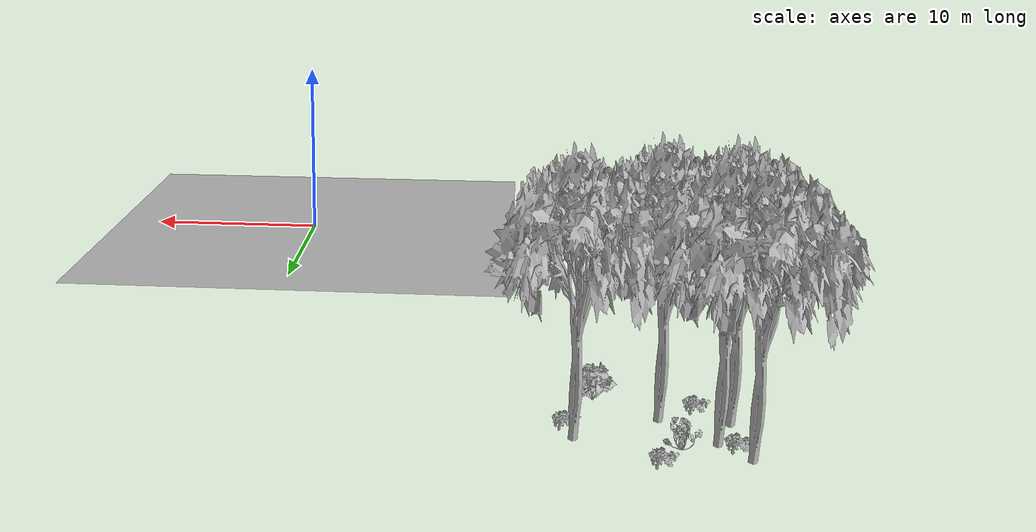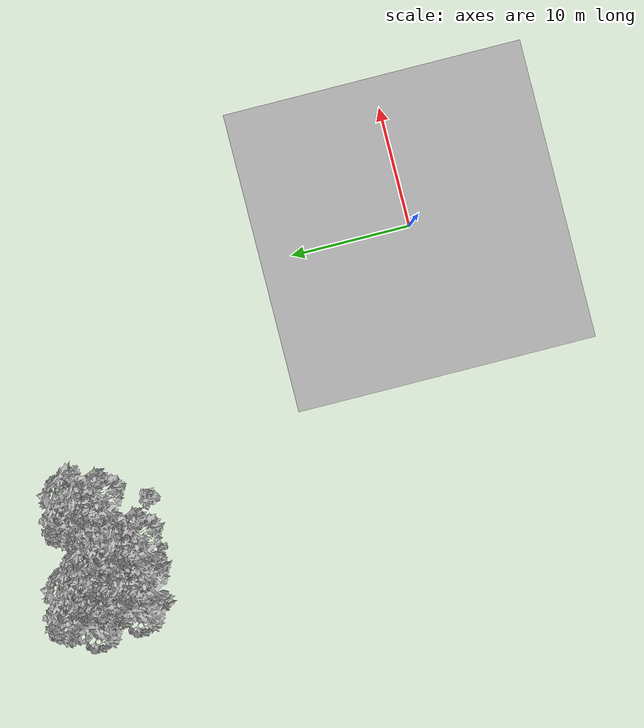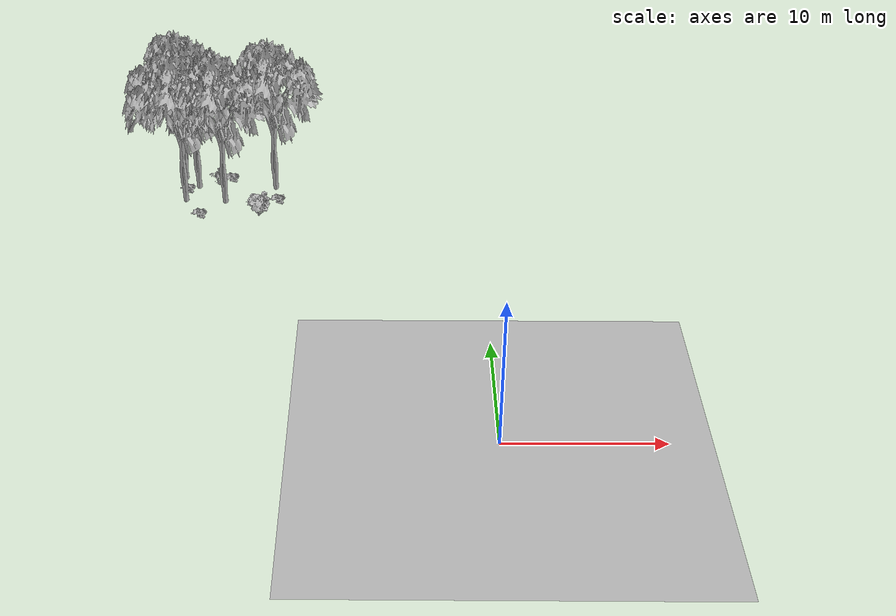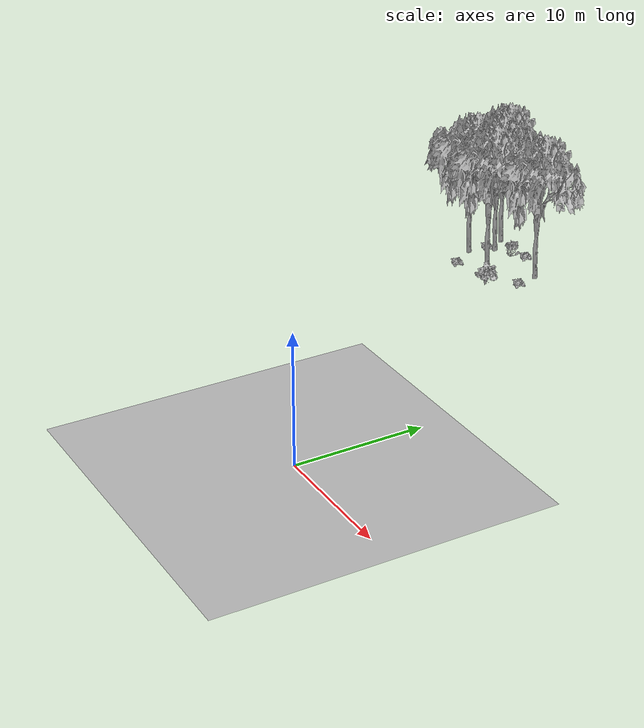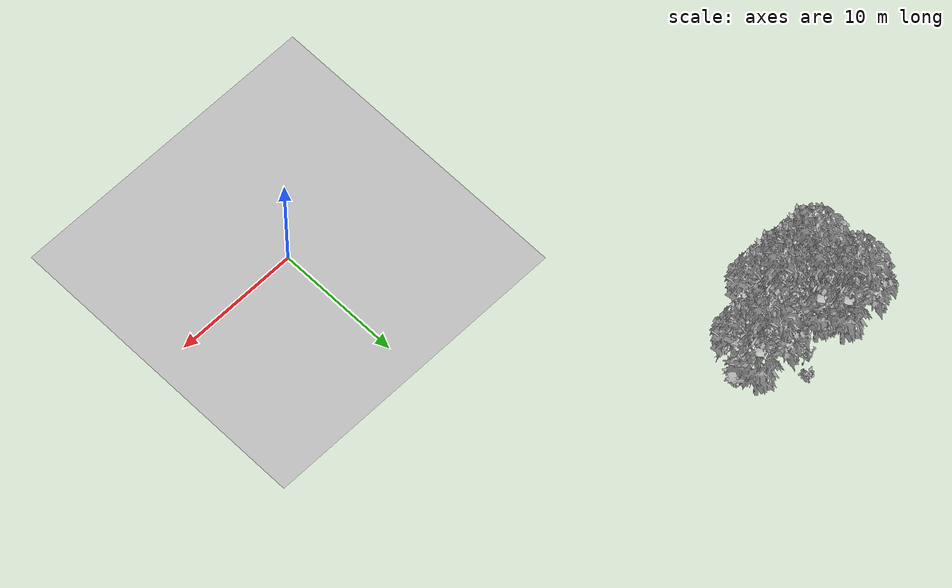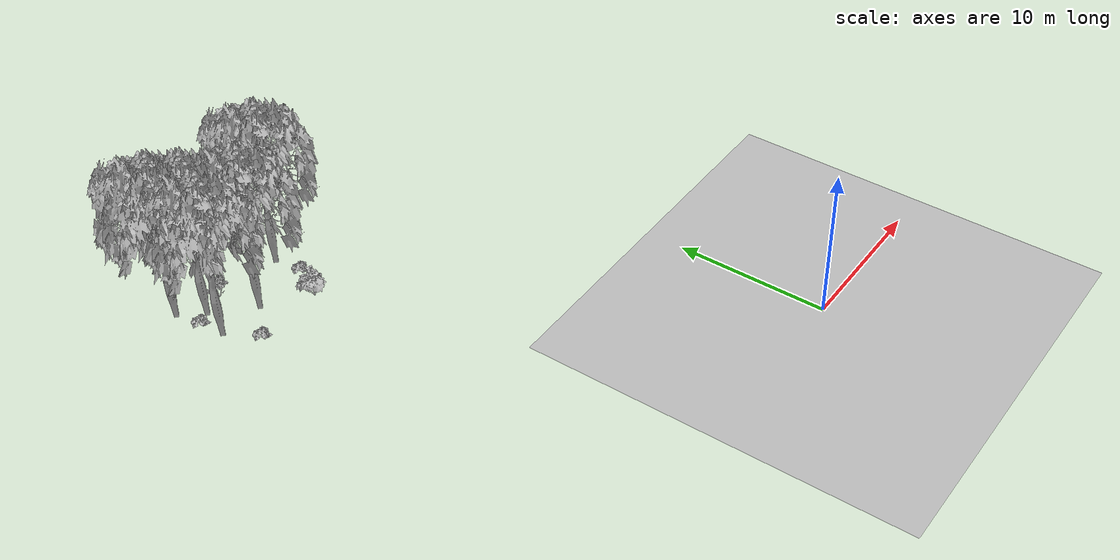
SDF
<sdf version="1.7">
 <world name="default">
  <model name="ground_plane">
   <static>1</static>
   <link name="link">
    <collision name="collision">
     <pose>-50 0 0 0 -0 0</pose>
     <geometry><plane><normal>0 0 1</normal><size>80 80</size></plane></geometry>
     <surface><contact><ode><min_depth>0.01</min_depth><max_vel>0</max_vel></ode></contact></surface>
    </collision>
    <visual name="grass">
     <cast_shadows>0</cast_shadows>
     <geometry>
      <mesh>
       <scale>0.46714285714285714 0.46714285714285714 0.1</scale>
       <uri>file://grass_plane/meshes/grass_plane.dae</uri>
      </mesh>
     </geometry>
    </visual>
   </link>
  </model>
  <model name="Tree 40">
   <static>1</static>
   <pose>-22.444600471217463 31.64850060128387 0 1.57079 -0 0</pose>
   <link name="link">
    <collision name="collision">
     <geometry><mesh><scale>3.5 5 3.5</scale><uri>model://tree_2/meshes/tree_2.obj</uri></mesh></geometry>
    </collision>
    <visual name="visual">
     <geometry><mesh><scale>3.5 5 3.5</scale><uri>model://tree_2/meshes/tree_2.obj</uri></mesh></geometry>
    </visual>
   </link>
  </model>
  <model name="Tree 69">
   <static>1</static>
   <pose>-21.263161754943933 30.255945150535155 0 1.57079 -0 0</pose>
   <link name="link">
    <collision name="collision">
     <geometry><mesh><scale>3.5 5 3.5</scale><uri>model://tree_2/meshes/tree_2.obj</uri></mesh></geometry>
    </collision>
    <visual name="visual">
     <geometry><mesh><scale>3.5 5 3.5</scale><uri>model://tree_2/meshes/tree_2.obj</uri></mesh></geometry>
    </visual>
   </link>
  </model>
  <model name="Tree 166">
   <static>1</static>
   <pose>-19.0602782574897 28.04103108464301 0 1.57079 -0 0</pose>
   <link name="link">
    <collision name="collision">
     <geometry><mesh><scale>3.5 5 3.5</scale><uri>model://tree_2/meshes/tree_2.obj</uri></mesh></geometry>
    </collision>
    <visual name="visual">
     <geometry><mesh><scale>3.5 5 3.5</scale><uri>model://tree_2/meshes/tree_2.obj</uri></mesh></geometry>
    </visual>
   </link>
  </model>
  <model name="Tree 449">
   <static>1</static>
   <pose>-22.039510061655633 28.22718616866908 0 1.57079 -0 0</pose>
   <link name="link">
    <collision name="collision">
     <geometry><mesh><scale>3.5 5 3.5</scale><uri>model://tree_2/meshes/tree_2.obj</uri></mesh></geometry>
    </collision>
    <visual name="visual">
     <geometry><mesh><scale>3.5 5 3.5</scale><uri>model://tree_2/meshes/tree_2.obj</uri></mesh></geometry>
    </visual>
   </link>
  </model>
  <model name="Tree 504">
   <static>1</static>
   <pose>-15.40488192485753 30.164437359989776 0 1.57079 -0 0</pose>
   <link name="link">
    <collision name="collision">
     <geometry><mesh><scale>3.5 5 3.5</scale><uri>model://tree_2/meshes/tree_2.obj</uri></mesh></geometry>
    </collision>
    <visual name="visual">
     <geometry><mesh><scale>3.5 5 3.5</scale><uri>model://tree_2/meshes/tree_2.obj</uri></mesh></geometry>
    </visual>
   </link>
  </model>
  <model name="Bush 133">
   <static>1</static>
   <pose>-15.055760782678593 28.410802836361597 0 1.57079 -0 0</pose>
   <link name="link">
    <collision name="collision">
     <geometry><mesh><scale>2 2 2</scale><uri>model://bush_2/meshes/bush_2.obj</uri></mesh></geometry>
     <surface><contact><collide_without_contact>false</collide_without_contact></contact></surface>
    </collision>
    <visual name="visual">
     <geometry><mesh><scale>2 2 2</scale><uri>model://bush_2/meshes/bush_2.obj</uri></mesh></geometry>
    </visual>
   </link>
  </model>
  <model name="Bush 138">
   <static>1</static>
   <pose>-20.74249885484158 26.25788105649093 0 1.57079 -0 0</pose>
   <link name="link">
    <collision name="collision">
     <geometry><mesh><scale>2 2 2</scale><uri>model://bush_2/meshes/bush_2.obj</uri></mesh></geometry>
     <surface><contact><collide_without_contact>false</collide_without_contact></contact></surface>
    </collision>
    <visual name="visual">
     <geometry><mesh><scale>2 2 2</scale><uri>model://bush_2/meshes/bush_2.obj</uri></mesh></geometry>
    </visual>
   </link>
  </model>
  <model name="Bush 293">
   <static>1</static>
   <pose>-16.302431624705246 26.05725189984571 0 1.57079 -0 0</pose>
   <link name="link">
    <collision name="collision">
     <geometry><mesh><scale>2 2 2</scale><uri>model://bush_1/meshes/bush_1.obj</uri></mesh></geometry>
     <surface><contact><collide_without_contact>false</collide_without_contact></contact></surface>
    </collision>
    <visual name="visual">
     <geometry><mesh><scale>2 2 2</scale><uri>model://bush_1/meshes/bush_1.obj</uri></mesh></geometry>
    </visual>
   </link>
  </model>
  <model name="Bush 300">
   <static>1</static>
   <pose>-19.654156099113045 30.77352912834398 0 1.57079 -0 0</pose>
   <link name="link">
    <collision name="collision">
     <geometry><mesh><scale>2 2 2</scale><uri>model://bush_4/meshes/bush_4.obj</uri></mesh></geometry>
     <surface><contact><collide_without_contact>false</collide_without_contact></contact></surface>
    </collision>
    <visual name="visual">
     <geometry><mesh><scale>2 2 2</scale><uri>model://bush_4/meshes/bush_4.obj</uri></mesh></geometry>
    </visual>
   </link>
  </model>
  <model name="Bush 425">
   <static>1</static>
   <pose>-22.020862192568252 30.0290021830629 0 1.57079 -0 0</pose>
   <link name="link">
    <collision name="collision">
     <geometry><mesh><scale>2 2 2</scale><uri>model://bush_2/meshes/bush_2.obj</uri></mesh></geometry>
     <surface><contact><collide_without_contact>false</collide_without_contact></contact></surface>
    </collision>
    <visual name="visual">
     <geometry><mesh><scale>2 2 2</scale><uri>model://bush_2/meshes/bush_2.obj</uri></mesh></geometry>
    </visual>
   </link>
  </model>
  <model name="Bush 459">
   <static>1</static>
   <pose>-18.83677399412066 31.682408560176157 0 1.57079 -0 0</pose>
   <link name="link">
    <collision name="collision">
     <geometry><mesh><scale>2 2 2</scale><uri>model://bush_2/meshes/bush_2.obj</uri></mesh></geometry>
     <surface><contact><collide_without_contact>false</collide_without_contact></contact></surface>
    </collision>
    <visual name="visual">
     <geometry><mesh><scale>2 2 2</scale><uri>model://bush_2/meshes/bush_2.obj</uri></mesh></geometry>
    </visual>
   </link>
  </model>
 </world>
</sdf>
